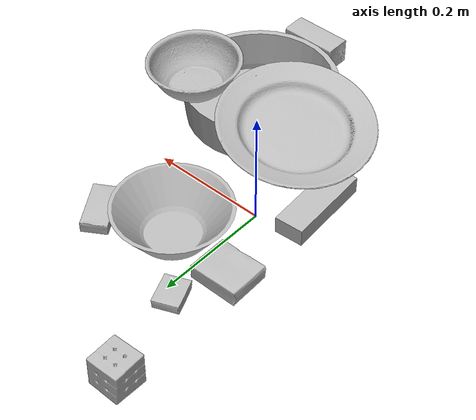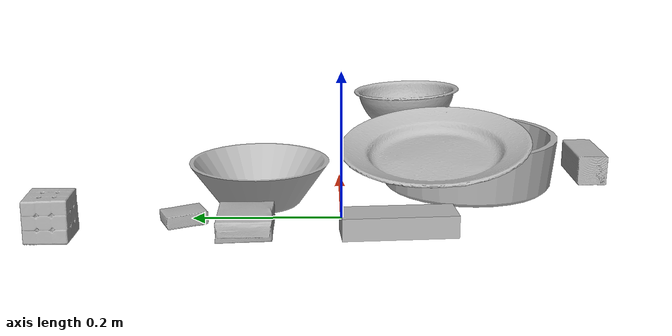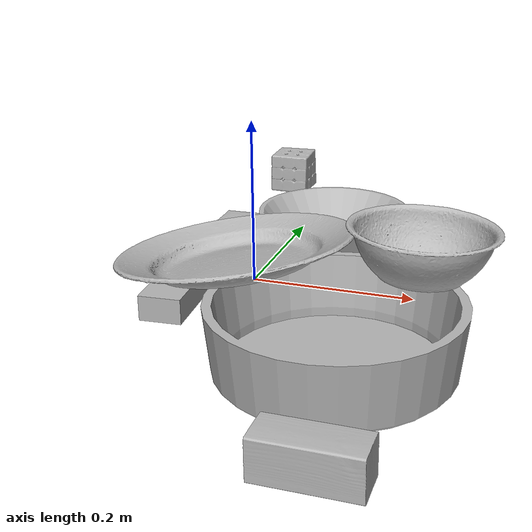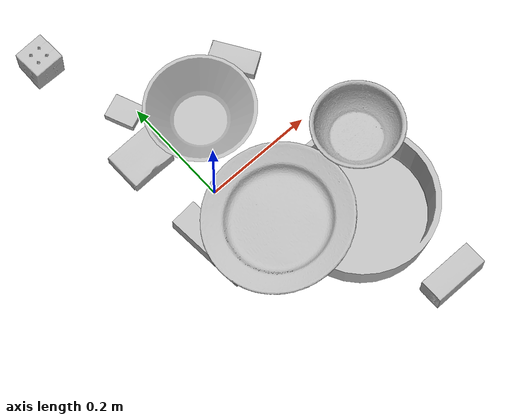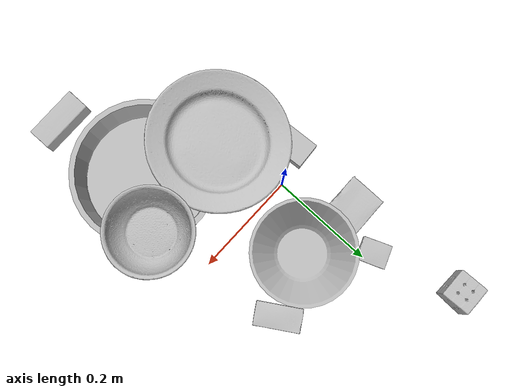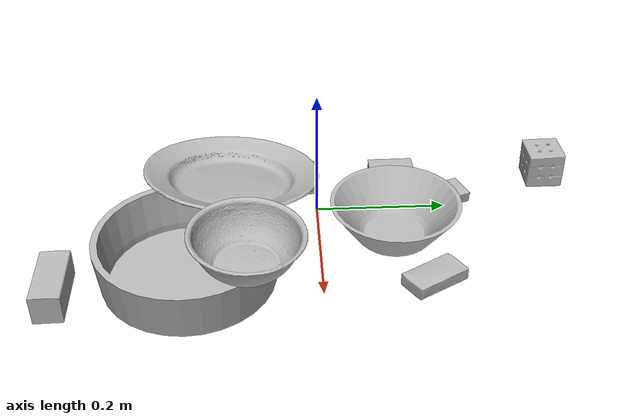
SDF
<sdf version="1.4">
  <world name="default">
    <light name="light1" type="point">
      <pose>0 0 1 0 0 0</pose>
      <diffuse>3 3 3 1</diffuse>
      <specular>3 3 3 1</specular>
    </light>
    <light name="light2" type="point">
      <pose>0 0.5 2 0 0 0</pose>
      <diffuse>1 1 1 1</diffuse>
      <specular>1 1 1 1</specular>
    </light>
    <light name="light3" type="point">
      <pose>0 0.5 2 0 0 0</pose>
      <diffuse>3 3 3 1</diffuse>
      <specular>3 3 3 1</specular>
    </light>
    <scene>
      <ambient>0.7 0.7 0.7</ambient>
    </scene>
    <model name="box1">
      <link name="link_box1">
        <collision name="default">
          <geometry>
            <mesh>
              <uri>model://gelatin_box/collision_meshes/collision.obj</uri>
              <scale>1.0 1.0 1.0</scale>
            </mesh>
          </geometry>
          <surface>
            <friction>
              <ode>
                <mu>0.5</mu>
                <mu2>0.5</mu2>
              </ode>
            </friction>
          <contact>
        <ode>
            <max_vel>0</max_vel>
            <min_depth>0.0001</min_depth>
            <kp>1e8</kp>
        </ode>
    </contact></surface>
        </collision>
        <visual name="default">
          <geometry>
            <mesh>
              <uri>model://gelatin_box/visual_meshes/visual.dae</uri>
              <scale>1.0 1.0 1.0</scale>
            </mesh>
          </geometry>
        </visual>
        <inertial>
          <mass>0.1979130208492279</mass>
          <pose>0.0004319618456065655 0.00011156871914863586 -0.0003640321083366871 -0.0010503722055948273 -0.004755818222760974 0.016440559471883928</pose>
          <inertia>
            <ixx>0.00013971045</ixx>
            <iyy>9.9794444e-05</iyy>
            <izz>0.00021267045</izz>
            <ixy>0</ixy>
            <ixz>0</ixz>
            <iyz>0</iyz>
          </inertia>
        </inertial>
      </link>
      <pose>-0.05500151962041855 0.12515826523303986 0.015168311074376106 0.005597398611967564 -0.007304461636367369 -1.5649532216396849</pose>
    </model>
    <model name="box11">
      <link name="link_box11">
        <collision name="default">
          <geometry>
            <mesh>
              <uri>model://sugar_box/collision_meshes/collision.obj</uri>
              <scale>0.5 0.5 0.5</scale>
            </mesh>
          </geometry>
          <surface>
            <friction>
              <ode>
                <mu>0.5</mu>
                <mu2>0.5</mu2>
              </ode>
            </friction>
          <contact>
        <ode>
            <max_vel>0</max_vel>
            <min_depth>0.0001</min_depth>
            <kp>1e8</kp>
        </ode>
    </contact></surface>
        </collision>
        <visual name="default">
          <geometry>
            <mesh>
              <uri>model://sugar_box/visual_meshes/visual.dae</uri>
              <scale>0.5 0.5 0.5</scale>
            </mesh>
          </geometry>
        </visual>
        <inertial>
          <mass>0.10992158949375153</mass>
          <pose>0.0005171863595023751 1.924554817378521e-05 -0.00018182402709499002 -0.00040462650409139634 0.0010506636387973133 0.002615378555960767</pose>
          <inertia>
            <ixx>2.2896586e-05</ixx>
            <iyy>7.400649e-05</iyy>
            <izz>8.8594585e-05</izz>
            <ixy>0</ixy>
            <ixz>0</ixz>
            <iyz>0</iyz>
          </inertia>
        </inertial>
      </link>
      <pose>0.1846868097782135 0.15837454795837402 0.011399306356906891 0.0007756432180616422 -0.023432736423418976 -1.0182794887055502</pose>
    </model>
    <model name="box2">
      <link name="link_box2">
        <collision name="default">
          <geometry>
            <mesh>
              <uri>model://jenga/collision_meshes/collision.obj</uri>
              <scale>1.0 1.0 1.0</scale>
            </mesh>
          </geometry>
          <surface>
            <friction>
              <ode>
                <mu>0.5</mu>
                <mu2>0.5</mu2>
              </ode>
            </friction>
          <contact>
        <ode>
            <max_vel>0</max_vel>
            <min_depth>0.0001</min_depth>
            <kp>1e8</kp>
        </ode>
    </contact></surface>
        </collision>
        <visual name="default">
          <geometry>
            <mesh>
              <uri>model://jenga/visual_meshes/visual.dae</uri>
              <scale>1.0 1.0 1.0</scale>
            </mesh>
          </geometry>
        </visual>
        <inertial>
          <mass>0.12651896476745605</mass>
          <pose>-2.502855807051674e-07 -0.00010250010382151231 -4.0923401684267446e-05 0.0 -7.34215461761844e-07 0.0</pose>
          <inertia>
            <ixx>3.5010868e-05</ixx>
            <iyy>0.00023723267</iyy>
            <izz>0.00025326604</izz>
            <ixy>0</ixy>
            <ixz>0</ixz>
            <iyz>0</iyz>
          </inertia>
        </inertial>
      </link>
      <pose>-0.06297501176595688 -0.0725628212094307 0.014999995939433575 6.819159711349691e-08 3.95806379508972e-09 1.6415329833998542</pose>
    </model>
    <model name="box21">
      <link name="link_box21">
        <collision name="default">
          <geometry>
            <mesh>
              <uri>model://wood_block/collision_meshes/collision.obj</uri>
              <scale>0.5 0.5 0.5</scale>
            </mesh>
          </geometry>
          <surface>
            <friction>
              <ode>
                <mu>0.5</mu>
                <mu2>0.5</mu2>
              </ode>
            </friction>
          <contact>
        <ode>
            <max_vel>0</max_vel>
            <min_depth>0.0001</min_depth>
            <kp>1e8</kp>
        </ode>
    </contact></surface>
        </collision>
        <visual name="default">
          <geometry>
            <mesh>
              <uri>model://wood_block/visual_meshes/visual.dae</uri>
              <scale>0.5 0.5 0.5</scale>
            </mesh>
          </geometry>
        </visual>
        <inertial>
          <mass>0.17952100932598114</mass>
          <pose>-2.906657982748584e-06 -0.00028540476341731846 0.00013204291462898254 -0.052208472466385096 -0.005192695659959234 -0.0068613786899108485</pose>
          <inertia>
            <ixx>6.0056565e-05</ixx>
            <iyy>0.0001897187</iyy>
            <izz>0.00018900905</izz>
            <ixy>0</ixy>
            <ixz>0</ixz>
            <iyz>0</iyz>
          </inertia>
        </inertial>
      </link>
      <pose>0.19078631699085236 -0.37795495986938477 0.0226292684674263 -0.005208517817892299 0.005718640403884907 -3.1366313063752242</pose>
    </model>
    <model name="box3">
      <link name="link_box3">
        <collision name="default">
          <geometry>
            <mesh>
              <uri>model://rubiks_cube/collision_meshes/collision.obj</uri>
              <scale>1.0 1.0 1.0</scale>
            </mesh>
          </geometry>
          <surface>
            <friction>
              <ode>
                <mu>0.5</mu>
                <mu2>0.5</mu2>
              </ode>
            </friction>
          <contact>
        <ode>
            <max_vel>0</max_vel>
            <min_depth>0.0001</min_depth>
            <kp>1e8</kp>
        </ode>
    </contact></surface>
        </collision>
        <visual name="default">
          <geometry>
            <mesh>
              <uri>model://rubiks_cube/visual_meshes/visual.dae</uri>
              <scale>1.0 1.0 1.0</scale>
            </mesh>
          </geometry>
        </visual>
        <inertial>
          <mass>0.2539031207561493</mass>
          <pose>2.6721041649580002e-05 5.2569666877388954e-05 -7.264316082000732e-06 -0.05467208428881645 -0.09814040742269707 -0.034455380154792534</pose>
          <inertia>
            <ixx>0.00014029852</ixx>
            <iyy>0.00013964424</iyy>
            <izz>0.00014146113</izz>
            <ixy>0</ixy>
            <ixz>0</ixz>
            <iyz>0</iyz>
          </inertia>
        </inertial>
      </link>
      <pose>-0.07047379016876221 0.3707253038883209 0.028678948059678078 -3.8868260880029404e-06 -1.2536811265696683e-06 -1.5454020611934978</pose>
    </model>
    <model name="box31">
      <link name="link_box31">
        <collision name="default">
          <geometry>
            <mesh>
              <uri>model://pudding_box/collision_meshes/collision.obj</uri>
              <scale>0.5 0.5 0.5</scale>
            </mesh>
          </geometry>
          <surface>
            <friction>
              <ode>
                <mu>0.5</mu>
                <mu2>0.5</mu2>
              </ode>
            </friction>
          <contact>
        <ode>
            <max_vel>0</max_vel>
            <min_depth>0.0001</min_depth>
            <kp>1e8</kp>
        </ode>
    </contact></surface>
        </collision>
        <visual name="default">
          <geometry>
            <mesh>
              <uri>model://pudding_box/visual_meshes/visual.dae</uri>
              <scale>0.5 0.5 0.5</scale>
            </mesh>
          </geometry>
        </visual>
        <inertial>
          <mass>0.030597222968935966</mass>
          <pose>0.00024474109522998333 0.00040339428232982755 -0.00025944135268218815 0.005213101792545572 -0.006603798718575614 0.020079825159656634</pose>
          <inertia>
            <ixx>8.6471455e-06</ixx>
            <iyy>5.8178607e-06</iyy>
            <izz>1.2769769e-05</izz>
            <ixy>0</ixy>
            <ixz>0</ixz>
            <iyz>0</iyz>
          </inertia>
        </inertial>
      </link>
      <pose>-0.019577456638216972 0.20959196984767914 0.009862901642918587 0.022348523325329807 -0.011391723154014372 -2.761578441602119</pose>
    </model>
    <model name="plate1">
      <link name="link_plate1">
        <collision name="default">
          <geometry>
            <mesh>
              <uri>model://pan_tefal/collision_meshes/collision.obj</uri>
              <scale>1.0 1.0 1.0</scale>
            </mesh>
          </geometry>
          <surface>
            <friction>
              <ode>
                <mu>0.5</mu>
                <mu2>0.5</mu2>
              </ode>
            </friction>
          <contact>
        <ode>
            <max_vel>0</max_vel>
            <min_depth>0.0001</min_depth>
            <kp>1e8</kp>
        </ode>
    </contact></surface>
        </collision>
        <visual name="default">
          <geometry>
            <mesh>
              <uri>model://pan_tefal/visual_meshes/visual.dae</uri>
              <scale>1.0 1.0 1.0</scale>
            </mesh>
          </geometry>
        </visual>
        <inertial>
          <mass>1.6321053504943848</mass>
          <pose>-0.00018001697026193142 3.279276279499754e-05 -0.00851493887603283 0.0008190355512640809 -0.00033013448733331557 -0.33186498661790637</pose>
          <inertia>
            <ixx>0.011266344</ixx>
            <iyy>0.011338978</iyy>
            <izz>0.02073917</izz>
            <ixy>0</ixy>
            <ixz>0</ixz>
            <iyz>0</iyz>
          </inertia>
        </inertial>
      </link>
      <pose>0.15786464512348175 -0.1903677135705948 0.038050007075071335 8.549821585732641e-08 6.93851430493246e-08 2.4971130138558335</pose>
    </model>
    <model name="bowl1">
      <link name="link_bowl1">
        <collision name="default">
          <geometry>
            <mesh>
              <uri>model://bowl/collision_meshes/collision.obj</uri>
              <scale>1.0 1.0 1.0</scale>
            </mesh>
          </geometry>
          <surface>
            <friction>
              <ode>
                <mu>0.5</mu>
                <mu2>0.5</mu2>
              </ode>
            </friction>
          <contact>
        <ode>
            <max_vel>0</max_vel>
            <min_depth>0.0001</min_depth>
            <kp>1e8</kp>
        </ode>
    </contact></surface>
        </collision>
        <visual name="default">
          <geometry>
            <mesh>
              <uri>model://bowl/visual_meshes/visual.dae</uri>
              <scale>1.0 1.0 1.0</scale>
            </mesh>
          </geometry>
        </visual>
        <inertial>
          <mass>0.08853479474782944</mass>
          <pose>0.0002044534485321492 -0.0010302085429430008 -0.0008042657864280045 -0.015764086220495594 0.014546762208611713 0.7140398935341641</pose>
          <inertia>
            <ixx>0.00020337135</ixx>
            <iyy>0.00019882726</iyy>
            <izz>0.00034214073</izz>
            <ixy>0</ixy>
            <ixz>0</ixz>
            <iyz>0</iyz>
          </inertia>
        </inertial>
      </link>
      <pose>0.2258206307888031 -0.10464376211166382 0.10425551235675812 -0.03982548744927436 -0.017307561280044226 -0.9644775933447802</pose>
    </model>
    <model name="plate2">
      <link name="link_plate2">
        <collision name="default">
          <geometry>
            <mesh>
              <uri>model://plate/collision_meshes/collision.obj</uri>
              <scale>1.0 1.0 1.0</scale>
            </mesh>
          </geometry>
          <surface>
            <friction>
              <ode>
                <mu>0.5</mu>
                <mu2>0.5</mu2>
              </ode>
            </friction>
          <contact>
        <ode>
            <max_vel>0</max_vel>
            <min_depth>0.0001</min_depth>
            <kp>1e8</kp>
        </ode>
    </contact></surface>
        </collision>
        <visual name="default">
          <geometry>
            <mesh>
              <uri>model://plate/visual_meshes/visual.dae</uri>
              <scale>1.0 1.0 1.0</scale>
            </mesh>
          </geometry>
        </visual>
        <inertial>
          <mass>0.10531359910964966</mass>
          <pose>-0.0006044624024070799 0.00027825951110571623 -0.001056199660524726 0.0022187923451504944 -0.0032254757952566134 0.45260828030698763</pose>
          <inertia>
            <ixx>0.00049265905</ixx>
            <iyy>0.00048794702</iyy>
            <izz>0.0009635677</izz>
            <ixy>0</ixy>
            <ixz>0</ixz>
            <iyz>0</iyz>
          </inertia>
        </inertial>
      </link>
      <pose>0.028915898874402046 -0.1284625381231308 0.08601047843694687 -0.13190382220521432 0.12216479581813665 1.8908712193194346</pose>
    </model>
    <model name="bowl2">
      <link name="link_bowl2">
        <collision name="default">
          <geometry>
            <mesh>
              <uri>model://bowl_a/collision_meshes/collision.obj</uri>
              <scale>1.0 1.0 1.0</scale>
            </mesh>
          </geometry>
          <surface>
            <friction>
              <ode>
                <mu>0.5</mu>
                <mu2>0.5</mu2>
              </ode>
            </friction>
          <contact>
        <ode>
            <max_vel>0</max_vel>
            <min_depth>0.0001</min_depth>
            <kp>1e8</kp>
        </ode>
    </contact></surface>
        </collision>
        <visual name="default">
          <geometry>
            <mesh>
              <uri>model://bowl_a/visual_meshes/visual.dae</uri>
              <scale>1.0 1.0 1.0</scale>
            </mesh>
          </geometry>
        </visual>
        <inertial>
          <mass>0.4180941581726074</mass>
          <pose>0.000278673687716946 4.731199442176148e-05 -0.0013765294570475817 -0.0009805326545729344 -0.001093820496942545 -0.19124076645491772</pose>
          <inertia>
            <ixx>0.0011903334</ixx>
            <iyy>0.0011976411</iyy>
            <izz>0.0021170534</izz>
            <ixy>0</ixy>
            <ixz>0</ixz>
            <iyz>0</iyz>
          </inertia>
        </inertial>
      </link>
      <pose>0.06947917491197586 0.11404341459274292 0.030383003875613213 -7.894747579588961e-07 -7.048362603662036e-08 -2.0747961218683866</pose>
    </model>
  <physics type="ode">
      <max_contacts>50</max_contacts>
      <ode>
        <solver>
          <type>quick</type>
          <iters>75</iters>
        </solver>
        <constraints>
          <contact_max_correcting_vel>0</contact_max_correcting_vel>
          <contact_surface_layer>0</contact_surface_layer>
        </constraints>
      </ode>
    </physics></world>
</sdf>
